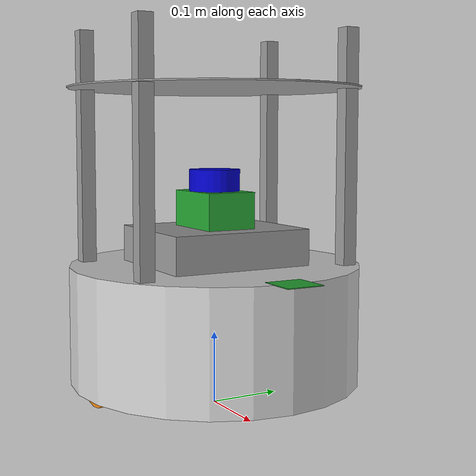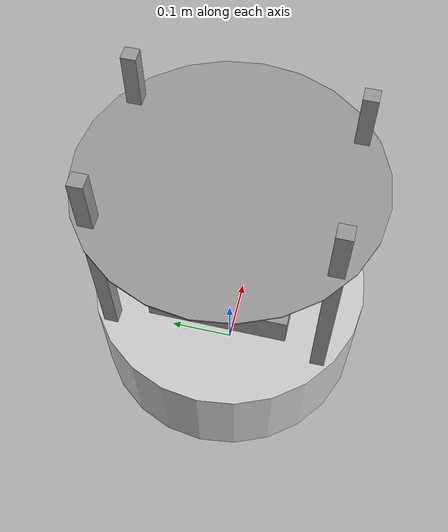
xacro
<?xml version="1.0"?>

<robot name="box_robot" xmlns:xacro="http://ros.org/wiki/xacro">

    <property name="PI" value="3.1415926" />
   <!-- Define a number of dimensions using properties -->
   <property name="torso1_offset_x" value="0.10" />
   <property name="torso1_offset_y" value="0.15" />
   <property name="torso1_offset_z" value="0.20" /> <!--base_height/2+torso_height/2 -->
   <property name="torso2_offset_x" value="0.10" />
   <property name="torso2_offset_y" value="-0.15" />
   <property name="torso2_offset_z" value="0.20" /> <!--base_height/2+torso_height/2 -->
   <property name="torso3_offset_x" value="-0.10" />
   <property name="torso3_offset_y" value="0.15" />
   <property name="torso3_offset_z" value="0.20" /> <!--base_height/2+torso_height/2 -->
   <property name="torso4_offset_x" value="-0.10" />
   <property name="torso4_offset_y" value="-0.15" />
   <property name="torso4_offset_z" value="0.20" /> <!--base_height/2+torso_height/2 -->

   <property name="dobot_offset_x" value="0.125" />
   <property name="dobot_offset_y" value="0.0" />
   <property name="dobot_offset_z" value="0.32" />

   <!-- Include all component files -->
   <xacro:include filename="$(find dashgo_description)/urdf/dashgobase/materials.urdf.xacro" />
   <xacro:include filename="$(find dashgo_description)/urdf/dashgobase/base.urdf.xacro" />
   <xacro:include filename="$(find dashgo_description)/urdf/dashgobase/torso.urdf.xacro" />
   <xacro:include filename="$(find dobot)/urdf/dobot.urdf.xacro" />
   <xacro:include filename="$(find dashgo_description)/urdf/dashgobase/rplidar.urdf.xacro" />

   <!-- Add the base and wheels -->
   <base name="base" color="Black"/>

   <!-- Attach the torso -->
   <torso name="torso1" parent="base" color="Grey">
      <origin xyz="${torso1_offset_x} ${torso1_offset_y} ${torso1_offset_z}" rpy="0 0 0" />
   </torso>
   <torso name="torso2" parent="base" color="Grey">
      <origin xyz="${torso2_offset_x} ${torso2_offset_y} ${torso2_offset_z}" rpy="0 0 0" />
   </torso>
   <torso name="torso3" parent="base" color="Grey">
      <origin xyz="${torso3_offset_x} ${torso3_offset_y} ${torso3_offset_z}" rpy="0 0 0" />
   </torso>
   <torso name="torso4" parent="base" color="Grey">
      <origin xyz="${torso4_offset_x} ${torso4_offset_y} ${torso4_offset_z}" rpy="0 0 0" />
   </torso>

   <link name="plane_link">
       <visual>
           <geometry>
               <cylinder length="0.002" radius="0.20" />
           </geometry>
           <material name="Grey" />
       </visual>
   </link>

   <joint name="plane_joint" type="fixed" >
       <origin xyz="0 0 0.32" rpy="0 0 0" />
       <parent link="base_link" />
       <child link="plane_link" />
   </joint>

   <link name="minipc_link">
       <visual>
           <geometry>
               <box size="0.17 0.20 0.05" />
           </geometry>
           <material name="Grey" />
       </visual>
       <inertial>
           <mass value="2.00" />
           <origin xyz="0 0 0" />
           <inertia ixx="0.0001" ixy="0.0" ixz="0.0"
               iyy="0.0001" iyz="0.0" izz="0.0001" />
       </inertial>
   </link>

   <joint name="minipc_joint" type="fixed">
       <origin xyz="0.00 0.00 0.105" rpy="0 0 0" />
       <parent link="base_link" />
       <child link="minipc_link" />
   </joint>

  <joint name="laser_plane_joint" type="fixed">
      <origin xyz="0.00 0.00 0.155" rpy="0 0 0" />
      <parent link="base_link" />
      <child link="laser_plane_frame" />
  </joint>

  <link name="laser_plane_frame">
    <visual>
      <origin xyz="0 0 0" rpy="0 0 0" />
      <geometry>
        <box size="0.1 0.07 0.05" />
      </geometry>
      <material name="Green" />
    </visual>
    <inertial>
      <mass value="0.000001" />
      <origin xyz="0 0 0" />
      <inertia ixx="0.0001" ixy="0.0" ixz="0.0"
        iyy="0.0001" iyz="0.0"
        izz="0.0001" />
    </inertial>
  </link>

   <!-- Add the laser -->
   <rplidar color="Blue" parent="laser_plane_frame" />

  <link name="front_flag">
      <visual>
        <origin xyz="0 0 0" rpy="0 0 0" />
        <geometry>
          <box size="0.05 0.05 0.001" />
        </geometry>
        <material name="TransparentGreen" />
      </visual>
  </link>

  <joint name="front_point_flag" type="fixed">
    <origin xyz="0.2 0 ${base_length/2}" rpy="0 0 0" />
    <parent link="base_link"/>
    <child link="front_flag" />
  </joint>

</robot>

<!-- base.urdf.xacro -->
<robot name="base" xmlns:xacro="http://ros.org/wiki/xacro">

  <!-- Define a number of dimensions using properties -->
  <property name="base_length" value="0.16" />
  <property name="base_radius" value="0.20" />
  <property name="wheel_length" value="0.02" />
  <property name="wheel_radius" value="0.060" />
  <property name="wheel_offset_x" value="0" />
  <property name="wheel_offset_y" value="0.17" />
  <property name="wheel_offset_z" value="-0.038" />

  <property name="PI" value="3.1415926" />

  <!-- define a wheel -->
  <macro name="wheel" params="suffix parent reflect color">
    <joint name="${parent}_${suffix}_wheel_joint" type="continuous">
      <axis xyz="0 0 1" />
      <limit effort="100" velocity="100"/>
      <safety_controller k_velocity="10" />
      <origin xyz="${wheel_offset_x} ${reflect*wheel_offset_y} ${wheel_offset_z}" rpy="${reflect*PI/2} 0 0" />
      <parent link="${parent}_link"/>
      <child link="${parent}_${suffix}_wheel_link"/>
    </joint>
    <link name="${parent}_${suffix}_wheel_link">
      <visual>
        <origin xyz="0 0 0" rpy="0 0 0" />
        <geometry>
          <cylinder radius="${wheel_radius}" length="${wheel_length}"/>
        </geometry>
        <material name="${color}" />
      </visual>
    </link>
  </macro>

  <!-- The base xacro macro -->
  <macro name="base" params="name color">
    <link name="${name}_link">
        <visual>
            <origin xyz="0 0 0" rpy="0 0 0"/>
            <geometry>
                <cylinder length="${base_length}" radius="${base_radius}"/>
            </geometry>
            <material name="iRobot/LightGrey"/>
        </visual>
        <collision>
            <origin xyz="0 0 0" rpy="0 0 0"/>
            <geometry>
                <cylinder length="${base_length}" radius="${base_radius}"/>
            </geometry>
        </collision>
    </link>
  </macro>

  <link name="base_footprint">
      <visual>
        <origin xyz="0 0 0" rpy="0 0 0" />
        <geometry>
          <box size="0.05 0.05 0.001" />
        </geometry>
        <material name="TransparentGreen" />
      </visual>
  </link>

  <joint name="base_joint" type="fixed">
    <origin xyz="0 0 ${base_length/2 - wheel_offset_z}" rpy="0 0 0" />
    <parent link="base_footprint"/>
    <child link="base_link" />
  </joint>

   <!-- Add the drive wheels -->
   <wheel parent="base" suffix="l" reflect="1" color="Orange"/>
   <wheel parent="base" suffix="r" reflect="-1" color="Orange"/>

</robot>

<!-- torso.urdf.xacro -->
<robot name="torso" xmlns:xacro="http://ros.org/wiki/xacro">

  <!-- Define a number of dimensions using properties -->
  <xacro:property name="torso_size_x" value="0.02" />
  <xacro:property name="torso_size_y" value="0.02" />
  <xacro:property name="torso_size_z" value="0.40" />

  <!-- Define the torso -->
  <xacro:macro name="torso" params="parent name color *origin">
    <joint name="${parent}_${name}_joint" type="fixed">
      <xacro:insert_block name="origin" />
      <parent link="${parent}_link"/>
      <child link="${name}_link"/>
    </joint>
    <link name="${name}_link">
      <visual>
        <origin xyz="0 0 0" rpy="0 0 0" />
        <geometry>
          <box size="${torso_size_x} ${torso_size_y} ${torso_size_z}" />
        </geometry>
        <material name="${color}" />
      </visual>
      <collision>
        <origin xyz="0 0 0" rpy="0 0 0" />
        <geometry>
          <box size="${torso_size_x} ${torso_size_y} ${torso_size_z}" />
        </geometry>
      </collision>
    </link>
  </xacro:macro>

</robot>

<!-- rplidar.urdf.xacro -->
<robot name="sensor_rplidar" xmlns:xacro="http://ros.org/wiki/xacro">

    <macro name="rplidar" params="color parent">
  	<joint name="laser_joint" type="fixed">
		<origin xyz="0 0 0.040" rpy="0 0 0" />
		<parent link="${parent}" />
		<child link="laser" />
        <!-- this is not laser_frame, I don't know how to set -->
	</joint>

	<link name="laser">
		<visual>
			<origin xyz="0 0 0" rpy="0 0 0"/>
			<geometry>
                <cylinder length="0.03" radius="0.035" />
			</geometry>
            <material name="${color}">
				<color rgba="0 0 .8 1"/>
			</material>
		</visual>
		<collision>
			<origin xyz="0.0 0.0 0.0" rpy="0 0 0"/>
			<geometry>
                <cylinder length="0.03" radius="0.035" />
			</geometry>
	  	</collision>
	      	<inertial>
			<mass value="0.564" />
			<origin xyz="0 0 0" />
			<inertia ixx="0.003881243" ixy="0.0" ixz="0.0"
			         iyy="0.000498940" iyz="0.0"
			         izz="0.003879257" />
	      	</inertial>
	</link>
    </macro>
</robot>
